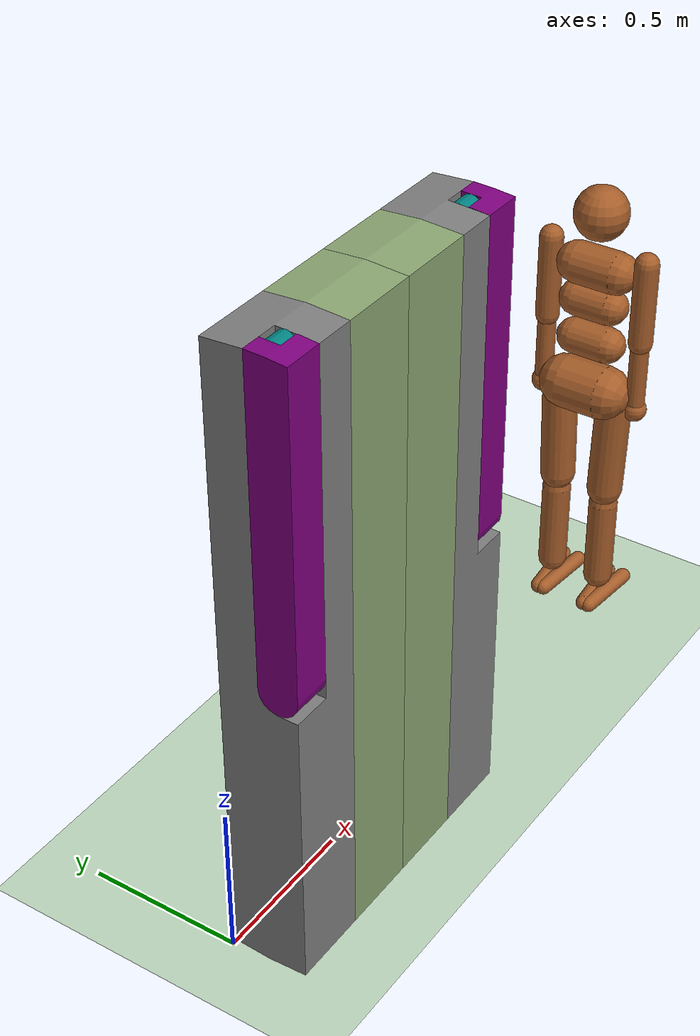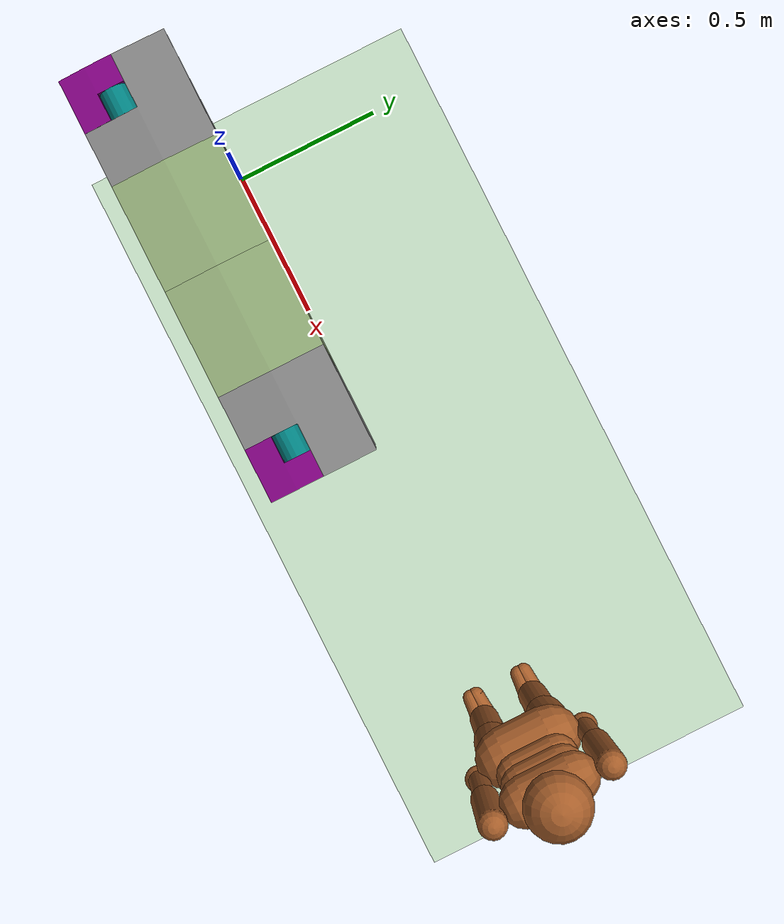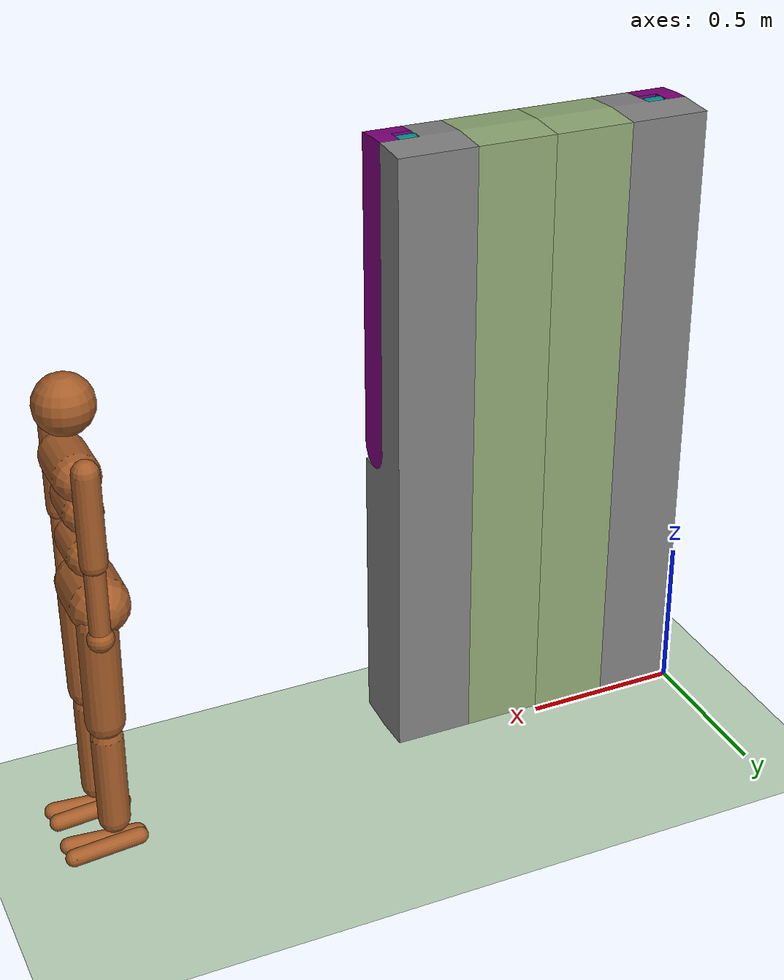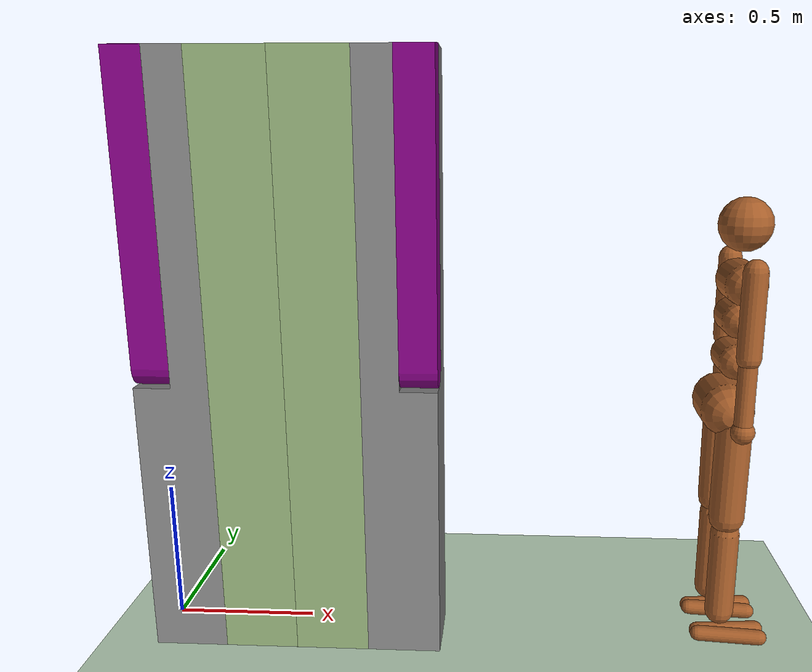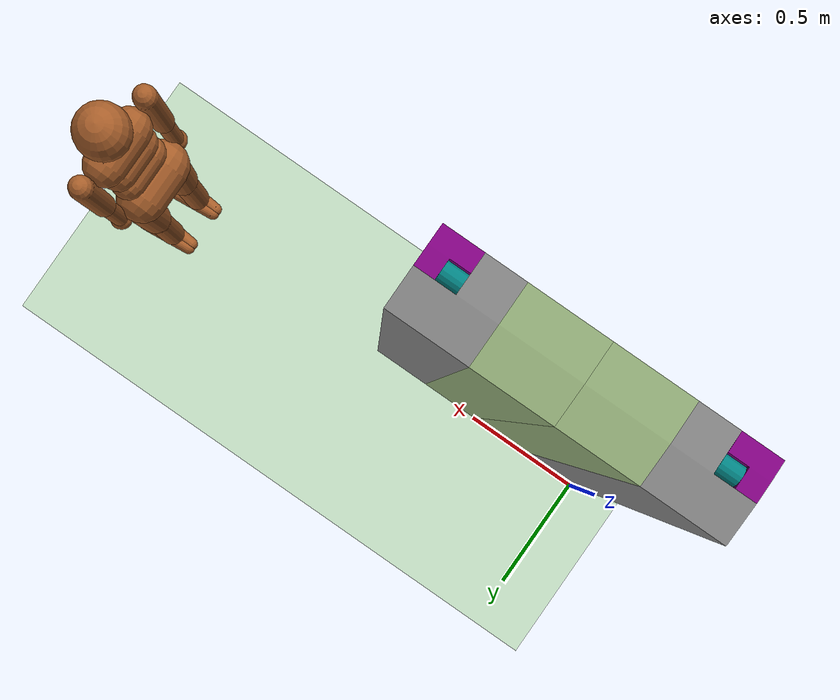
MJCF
<mujoco>
    <compiler meshdir="binary_meshes" angle="degree" />

    <option timestep="0.001" integrator="RK4" gravity="0 0 -9.81"/>

    <default>
        <joint limited="true" damping="30" armature="0.05" stiffness="0" actuatorfrcrange="-400 400"/>
        <geom condim="3" friction="1.2 0.005 0.0001" density="100" contype="0" conaffinity="0"/>
        <motor ctrllimited="true" ctrlrange="-1 1" gear="120"/>
        <default class="body">
            <geom type="capsule" condim="1" friction=".7" solimp=".9 .99 .003" solref=".015 1"
            material="body" group="1" contype="2" conaffinity="3"/>
            <default class="thigh">
                <geom size=".06"/>
            </default>
            <default class="shin">
                <geom fromto="0 0 0 0 0 -.3" size=".049"/>
            </default>
            <default class="foot">
                <geom size=".027"/>
                <default class="foot1">
                    <geom fromto="-.07 -.01 0 .14 -.03 0"/>
                </default>
                <default class="foot2">
                    <geom fromto="-.07 .01 0 .14  .03 0"/>
                </default>
            </default>
            <default class="arm_upper">
                <geom size=".04"/>
            </default>
            <default class="arm_lower">
                <geom size=".031"/>
            </default>
            <default class="hand">
                <geom type="sphere" size=".04"/>
            </default>
        </default>
    </default>

    <asset>
    <!--this scale makes it so that the robot is 1 meter in height, assuming mujoco base units are in meters-->
        <mesh name="base" file="TARS2_base_link_1.STL"  scale="2 2 2"/>
        <mesh name="middle_left" file="TARS2_middleslab_3.STL" scale="2 2 2"/>
        <mesh name="left" file="TARS2_leftslab_1.STL" scale="2 2 2"/>
        <mesh name="left_upper_arm" file="TARS2_leftarm1_1.STL"  scale="2 2 2"/>
        <mesh name="left_lower_arm" file="TARS2_leftarm2_1.STL" scale="2 2 2"/>
        <mesh name="middle_right" file="TARS2_middleslab_2.STL" scale="2 2 2"/>
        <mesh name="right" file="TARS2_rightslab_1.STL" scale="2 2 2"/>
        <mesh name="right_upper_arm" file="TARS2_rightarm1_1.STL" scale="2 2 2"/>
        <mesh name="right_lower_arm" file="TARS2_leftarm2_2.STL" scale="2 2 2"/>
        <texture name="body" type="cube" builtin="flat" mark="cross" width="128" height="128" rgb1="0.8 0.6 0.4" rgb2="0.8 0.6 0.4" markrgb="1 1 1"/>
        <material name="body" texture="body" texuniform="true" rgba="0.8 0.6 .4 1"/>
    </asset>

    <worldbody>
        <light name="sun" pos="0 0 6" dir="0 0 -1" diffuse="1 1 1" specular="0.3 0.3 0.3"/>
        <geom name="floor" type="plane" size="50 50 0.1" rgba="0.75 0.85 0.75 1" friction="1.0 0.005 0.0001" contype="1" conaffinity="3" />
        <!--BASE-->
        <body name="base_link" euler="90 0 0">
            <freejoint name="root" />
            <geom type="mesh" mesh="base" rgba="0.35 0.45 0.75 1" contype="1" conaffinity="0" />
            <!--LEFT CHAIN-->
            <!--LEFT BASE LINK-->
            <body name="left_base_link">
                <joint name="r_lm" type="hinge" axis="1 0 0" pos="0 1 0.15" range="-355 355" damping="100" />
                <joint name="ud_lm" type="slide" axis="0 1 0" range="-0.2 0.2" damping="100" actuatorfrcrange="-400 400"/>
                <geom type="mesh" mesh="middle_left" rgba="0.55 0.65 0.45 1" contype="1" conaffinity="0" />
                <!--LEFT LINK-->
                <body name="left_link">
                    <joint name="r_l" type="hinge" axis="1 0 0" pos="0 1 0.15" range="-355 355" damping="100" />
                    <joint name="ud_l" type="slide" axis="0 1 0" range="-0.2 0.2" damping="100" actuatorfrcrange="-400 400"/>
                    <geom type="mesh" mesh="left" rgba="0.5 0.5 0.5 1" margin="0.0003" gap="0.0001" solref="0.01 1" solimp="0.9 0.95 0.001" contype="1" conaffinity="0" />
                    <!--LEFT UPPER ARM-->
                    <body name="left_upper_arm">
                        <joint name="r_lu" type="hinge" axis="1 0 0" pos="0 1 0.2" range="0 270" damping="100" />
                        <geom name="left_upper_arm_geom" type="mesh" mesh="left_upper_arm" rgba="0.5 0 0.5 1" margin="0.0003" gap="0.0001" solref="0.01 1" solimp="0.9 0.95 0.001" contype="1" conaffinity="0" />
                        <!--LEFT LOWER ARM-->
                        <body name="left_lower_arm">
                            <joint name="r_ll" type="hinge" axis="1 0 0" pos="0 2 0.15" range="0 355" damping="100" />
                            <geom name="left_lower_arm_geom" type="mesh" mesh="left_lower_arm" rgba="0 0.5 0.5 1" margin="0.0003" gap="0.0001" solref="0.01 1" solimp="0.9 0.95 0.001" contype="1" conaffinity="0" />
                        </body>
                    </body>
                </body>
            </body>
            <!--RIGHT CHAIN-->
            <!--RIGHT BASE LINK-->
            <body name="right_base_link">
                <joint name="r_rm" type="hinge" axis="1 0 0" pos="0 1 0.15" range="-355 355" damping="100" />
                <joint name="ud_rm" type="slide" axis="0 1 0" range="-0.2 0.2" damping="100" actuatorfrcrange="-400 400"/>
                <geom type="mesh" mesh="middle_right" rgba="0.55 0.65 0.45 1" contype="1" conaffinity="0" />
                <!--RIGHT LINK-->
                <body name="right_link">
                    <joint name="r_r" type="hinge" axis="1 0 0" pos="0 1 0.15" range="-355 355" damping="100" />
                    <joint name="ud_r" type="slide" axis="0 1 0" range="-0.2 0.2" damping="100" actuatorfrcrange="-400 400"/>
                    <geom type="mesh" mesh="right" rgba="0.5 0.5 0.5 1" margin="0.0003" gap="0.0001" solref="0.01 1" solimp="0.9 0.95 0.001" contype="1" conaffinity="0" />
                    <!--RIGHT UPPER ARM-->
                    <body name="right_upper_arm">
                        <joint name="r_ru" type="hinge" axis="1 0 0" pos="0 1 0.2" range="0 270" damping="100" />
                        <geom name="right_upper_arm_geom" type="mesh" mesh="right_upper_arm" rgba="0.5 0 0.5 1" margin="0.0003" gap="0.0001" solref="0.01 1" solimp="0.9 0.95 0.001" contype="1" conaffinity="0" />
                        <!--RIGHT LOWER ARM-->
                        <body name="right_lower_arm">
                            <joint name="r_rl" type="hinge" axis="1 0 0" pos="0 2 0.15" range="0 355" damping="100" />
                            <geom name="right_lower_arm_geom" type="mesh" mesh="right_lower_arm" rgba="0 0.5 0.5 1" margin="0.0003" gap="0.0001" solref="0.01 1" solimp="0.9 0.95 0.001" contype="1" conaffinity="0" />
                        </body>
                    </body>
                </body>
            </body>
        </body>
        <body name="human_torso" pos="2 0 1.282" childclass="body">
        <freejoint name="human_root"/>
        <geom name="human_torso" fromto="0 -.07 0 0 .07 0" size=".07"/>
        <geom name="waist_upper" fromto="-.01 -.06 -.12 -.01 .06 -.12" size=".06"/>
        <body name="head" pos="0 0 .19">
            <geom name="head" type="sphere" size=".09"/>
        </body>
        <body name="waist_lower" pos="-.01 0 -.26">
            <geom name="waist_lower" fromto="0 -.06 0 0 .06 0" size=".06"/>
            <body name="pelvis" pos="0 0 -.165">
            <geom name="butt" fromto="-.02 -.07 0 -.02 .07 0" size=".09"/>
            <body name="thigh_right" pos="0 -.1 -.04">
                <geom name="thigh_right" fromto="0 0 0 0 .01 -.34" class="thigh"/>
                <body name="shin_right" pos="0 .01 -.4">
                <geom name="shin_right" class="shin"/>
                <body name="foot_right" pos="0 0 -.39">
                    <geom name="foot1_right" class="foot1"/>
                    <geom name="foot2_right" class="foot2"/>
                </body>
                </body>
            </body>
            <body name="thigh_left" pos="0 .1 -.04">
                <geom name="thigh_left" fromto="0 0 0 0 -.01 -.34" class="thigh"/>
                <body name="shin_left" pos="0 -.01 -.4">
                <geom name="shin_left" fromto="0 0 0 0 0 -.3" class="shin"/>
                <body name="foot_left" pos="0 0 -.39">
                    <geom name="foot1_left" class="foot1"/>
                    <geom name="foot2_left" class="foot2"/>
                </body>
                </body>
            </body>
            </body>
        </body>
        <body name="upper_arm_right" pos="0 -.17 .06">
            <geom name="upper_arm_right" fromto="0 0 0 0 0 -.28" class="arm_upper"/>
            <body name="lower_arm_right" pos="0 0 -.28">
            <geom name="lower_arm_right" fromto="0 0 0 0 0 -.25" class="arm_lower"/>
            <body name="hand_right" pos="0 0 -.25">
                <geom name="hand_right" zaxis="0 0 -1" class="hand"/>
            </body>
            </body>
        </body>
        <body name="upper_arm_left" pos="0 .17 .06">
            <geom name="upper_arm_left" fromto="0 0 0 0 0 -.28" class="arm_upper"/>
            <body name="lower_arm_left" pos="0 0 -.28">
            <geom name="lower_arm_left" fromto="0 0 0 0 0 -.25" class="arm_lower"/>
            <body name="hand_left" pos="0 0 -.25">
                <geom name="hand_left" zaxis="0 0 -1" class="hand"/>
            </body>
            </body>
        </body>
        </body>
    </worldbody>

    <contact>
        <exclude body1="waist_lower" body2="thigh_right"/>
        <exclude body1="waist_lower" body2="thigh_left"/>
    </contact>

    <actuator>
        <position name="r_lm_pos" joint="r_lm" kp="2" ctrlrange="-355 355"/>
        <position name="ud_lm_pos" joint="ud_lm" kp="2" ctrlrange="-40 40"/>

        <position name="r_l_pos" joint="r_l" kp="2" ctrlrange="-355 355"/>
        <position name="ud_l_pos" joint="ud_l" kp="2" ctrlrange="-40 40"/>

        <position name="r_lu_pos" joint="r_lu" kp="2" ctrlrange="0 355"/>
        <position name="r_ll_pos" joint="r_ll" kp="2" ctrlrange="0 355"/>

        <position name="r_rm_pos" joint="r_rm" kp="2" ctrlrange="-355 355"/>
        <position name="ud_rm_pos" joint="ud_rm" kp="2" ctrlrange="-40 40"/>

        <position name="r_r_pos" joint="r_r" kp="2" ctrlrange="-355 355"/>
        <position name="ud_r_pos" joint="ud_r" kp="2" ctrlrange="-40 40"/>

        <position name="r_ru_pos" joint="r_ru" kp="2" ctrlrange="0 355"/>
        <position name="r_rl_pos" joint="r_rl" kp="2" ctrlrange="0 355"/>

    </actuator>

    <keyframe>
        <!--         base link  x y z   w   x     y z     r_lm  ud_lm  r_l  ud_l     r_lu    r_ll  r_rm  ud_rm   r_r  ud_r  r_ru   r_rl     human x y    z-->
        <key name="init0" qpos="0 0 0.2 0.5 0.866 0 0     0     0     -1    0        2.2     2     0     0      -1    0     2.2     2        0 -1.4 1.2 0.707 0 -0.707 0"
            ctrl="0 0 -114 0 250.8 228 0 0 -114 0 250.8 228" /> <!--x with middle links tilted forward and side links tilted back-->
        <key name="init1" qpos="0 0 0.2 0.5 0.866 0 0    -1     0      1    0        1.2     2    -1     0       1    0     1.2     2        0 -1.4 1.2 0.707 0 -0.707 0"
            ctrl="-114 0 114 0 136.8 228 -114 0 114 0 136.8 228"/> <!--x with middle links tilted back and side links tilted forward-->
        <key name="init2" qpos="0 0 0.2 0.5 0.866 0 0    -1     0      0    0        2.6     2     0    0       -1    0     2.6     2        0 -1.4 1.2 0.707 0 -0.707 0"
            ctrl="-114 0 0 0 296.4 228 0 0 -114 0 296.4 228"/> <!--x with middle right link tilted forward and all other links tilted back-->
        <key name="init3" qpos="0 0 0.2 0.5 0.866 0 0     0     0     -1    0        2.6     2    -1    0        0    0     2.6     2        0 -1.4 1.2 0.707 0 -0.707 0"
            ctrl="0 0 -114 0 296.4 228 -114 0 0 0 296.4 228"/> <!--x with middle left link tilted forward and all other links tilted back-->
    </keyframe>

</mujoco>
